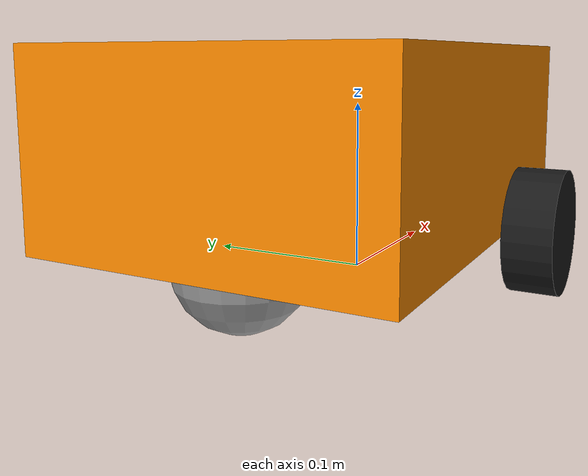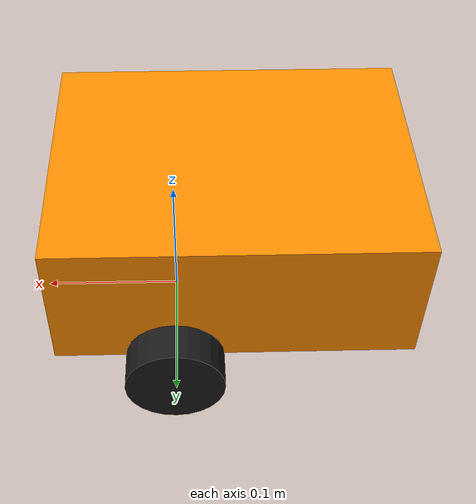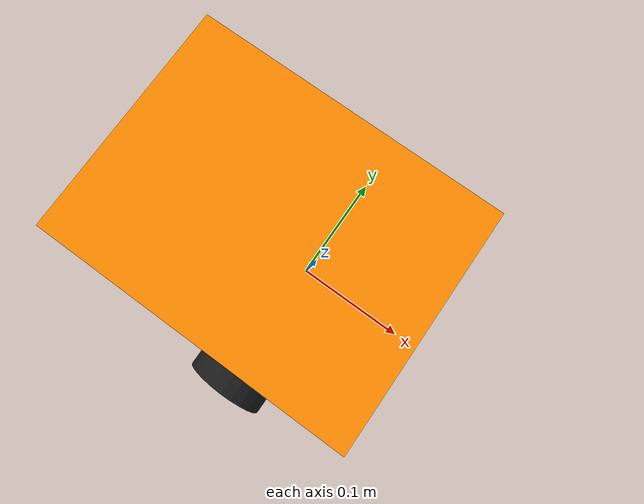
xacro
<?xml version="1.0"?>
<robot xmlns:xacro="http://www.ros.org/wiki/xacro" name="smc_diff_bot">

    <!-- ################### inertia macros  ############################-->
    <xacro:macro name="inertial_sphere" params="mass radius *origin">
        <inertial>
            <xacro:insert_block name="origin"/>
            <mass value="${mass}" />
            <inertia ixx="${(2/5) * mass * (radius*radius)}" ixy="0.0" ixz="0.0"
                    iyy="${(2/5) * mass * (radius*radius)}" iyz="0.0"
                    izz="${(2/5) * mass * (radius*radius)}" />
        </inertial>
    </xacro:macro>

    <xacro:macro name="inertial_box" params="mass x y z *origin">
        <inertial>
            <xacro:insert_block name="origin"/>
            <mass value="${mass}" />
            <inertia ixx="${(1/12) * mass * (y*y+z*z)}" ixy="0.0" ixz="0.0"
                    iyy="${(1/12) * mass * (x*x+z*z)}" iyz="0.0"
                    izz="${(1/12) * mass * (x*x+y*y)}" />
        </inertial>
    </xacro:macro>

    <xacro:macro name="inertial_cylinder" params="mass length radius *origin">
        <inertial>
            <xacro:insert_block name="origin"/>
            <mass value="${mass}" />
            <inertia ixx="${(1/12) * mass * (3*radius*radius + length*length)}" ixy="0.0" ixz="0.0"
                    iyy="${(1/12) * mass * (3*radius*radius + length*length)}" iyz="0.0"
                    izz="${(1/2) * mass * (radius*radius)}" />
        </inertial>
    </xacro:macro>

    <!-- ################### color materials  ############################-->
    <material name="orange">
        <color rgba="1 0.55 0 1"/>
    </material>

    <material name="black">
        <color rgba="0.1 0.1 0.1 1"/>
    </material>

    <material name="silver">
        <color rgba="0.6 0.6 0.6 1"/>
    </material>

    <!-- ################### robot properties  ############################-->
    <xacro:property name="chassis_length" value="0.25"/>
    <xacro:property name="chassis_width" value="0.19"/>
    <xacro:property name="chassis_height" value="0.10"/>
    <xacro:property name="chassis_mass" value="3.0"/>

    <xacro:property name="wheel_seperation" value="0.22"/>
    <xacro:property name="wheel_radius" value="0.034"/>
    <xacro:property name="wheel_width" value="0.026"/>
    <xacro:property name="wheel_mass" value="0.08"/>

    <xacro:property name="castor_wheel_mass" value="0.04"/>

    <!-- BASE LINK -->

    <link name="base_link">
    </link>

    <!-- CHASSIS LINK -->

    <joint name="chassis_joint" type="fixed">
        <parent link="base_link"/>
        <child link="chassis"/>
        <origin xyz="0 0 ${wheel_radius}"/>
    </joint>

    <link name="chassis">
        <visual>
          <origin xyz="${-chassis_length/6} 0 ${chassis_height/2}" rpy="0 0 0"/>
          <geometry>
              <box size="${chassis_length} ${chassis_width} ${chassis_height}"/>
          </geometry>
          <material name="orange"/>
        </visual>
        <collision>
           <origin xyz="${-chassis_length/6} 0 ${chassis_height/2}" rpy="0 0 0"/>
            <geometry>
                <box size="${chassis_length} ${chassis_width} ${chassis_height}"/>
            </geometry>
        </collision>
        <xacro:inertial_box mass="${chassis_mass}" x="${chassis_length}" y="${chassis_width}" z="${chassis_height}">
            <origin xyz="${-chassis_length/6} 0 ${wheel_radius*2}" rpy="0 0 0"/>
        </xacro:inertial_box>
    </link>

    <!-- LEFT DRIVE WHEEL -->

    <joint name="left_wheel_joint" type="continuous">
      <parent link="chassis"/>
      <child link="left_wheel"/>
      <origin xyz="0 ${wheel_seperation/2} 0" rpy="${-pi/2} 0 0"/>
      <axis xyz="0 0 1"/>
    </joint>

    <link name="left_wheel">
      <visual>
          <origin xyz="0 0 0" rpy="0 0 0"/>
          <geometry>
              <cylinder radius="${wheel_radius}" length="${wheel_width}"/>
          </geometry>
          <material name="black"/>
      </visual>
      <collision>
      <origin xyz="0 0 0" rpy="0 0 0"/>
          <geometry>
              <cylinder radius="${wheel_radius}" length="${wheel_width}"/>
          </geometry>
      </collision>
      <xacro:inertial_cylinder mass="${wheel_mass}" length="${wheel_width}" radius="${wheel_radius}">
          <origin xyz="0 0 0" rpy="0 0 0"/>
      </xacro:inertial_cylinder>
    </link>

    <!-- RIGHT DRIVE WHEEL -->

    <joint name="right_wheel_joint" type="continuous">
      <parent link="chassis"/>
      <child link="right_wheel"/>
      <origin xyz="0 ${-wheel_seperation/2} 0" rpy="${-pi/2} 0 0"/>
      <axis xyz="0 0 1"/>
    </joint>

    <link name="right_wheel">
      <visual>
          <origin xyz="0 0 0" rpy="0 0 0"/>
          <geometry>
              <cylinder radius="${wheel_radius}" length="${wheel_width}"/>
          </geometry>
          <material name="black"/>
      </visual>
      <collision>
      <origin xyz="0 0 0" rpy="0 0 0"/>
          <geometry>
              <cylinder radius="${wheel_radius}" length="${wheel_width}"/>
          </geometry>
      </collision>
      <xacro:inertial_cylinder mass="${wheel_mass}" length="${wheel_width}" radius="${wheel_radius}">
          <origin xyz="0 0 0" rpy="0 0 0"/>
      </xacro:inertial_cylinder>
    </link>

    <!--  CASTOR WHEEL LINK -->

    <joint name="castor_wheel_joint" type="fixed">
        <parent link="chassis"/>
        <child link="castor_wheel"/>
        <origin xyz="${-chassis_length/2} 0 0"/>
    </joint>

    <link name="castor_wheel">
        <visual>
            <origin xyz="0 0 0" rpy="0 0 0"/>
            <geometry>
                <sphere radius="${wheel_radius}" />
            </geometry>
            <material name="silver"/>
        </visual>
        <collision>
           <origin xyz="0 0 0" rpy="0 0 0"/>
            <geometry>
                <sphere radius="${wheel_radius}" />
            </geometry>
        </collision>
        <xacro:inertial_sphere mass="${castor_wheel_mass}" radius="${wheel_radius}">
            <origin xyz="0 0 0" rpy="0 0 0"/>
        </xacro:inertial_sphere>
    </link>

    <!--  IMU LINK -->

    <joint name="imu_joint" type="fixed">
        <parent link="chassis"/>
        <child link="imu"/>
        <origin xyz="0 0 ${chassis_height}"/>
    </joint>

    <link name="imu">
    </link>

    <!-- ############# add ros2_control => INSERT SMC_L298N_ROS_PLUGIN ############### -->

    <ros2_control name="smc_differential_drive_control" type="system">

      <hardware>
        <plugin>smc_l298n_ros_plugin/SMCHardwareDriver</plugin>
        <param name="motorA_wheel_name">left_wheel_joint</param>
        <param name="motorB_wheel_name">right_wheel_joint</param>
        <param name="port">/dev/ttyACM0</param>
      </hardware>

      <joint name="left_wheel_joint">
        <command_interface name="velocity">
            <param name="min">-8.0</param>
            <param name="max">8.0</param>
        </command_interface>
        <state_interface name="position"/>
        <state_interface name="velocity"/>
      </joint>

      <joint name="right_wheel_joint">
        <command_interface name="velocity">
            <param name="min">-8.0</param>
            <param name="max">8.0</param>
        </command_interface>
        <state_interface name="position"/>
        <state_interface name="velocity"/>
      </joint>

    </ros2_control>

</robot>
